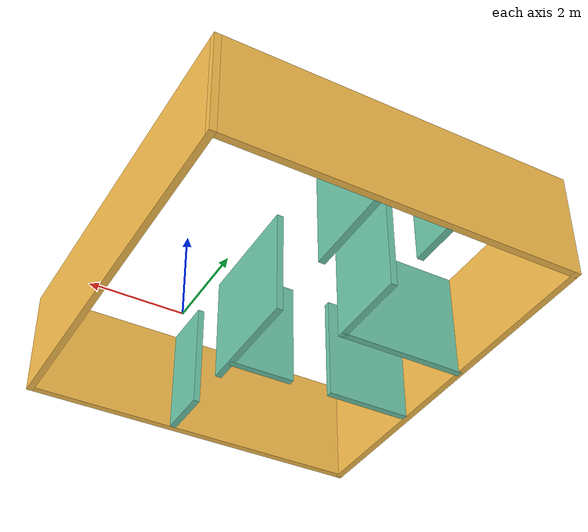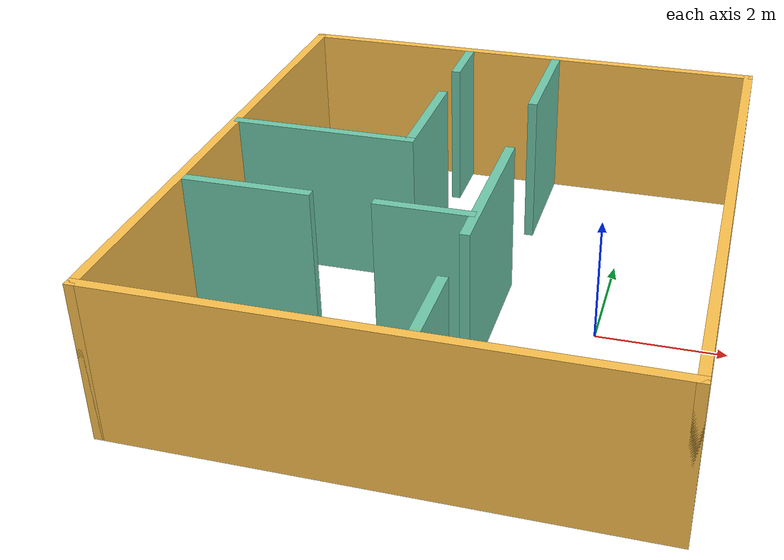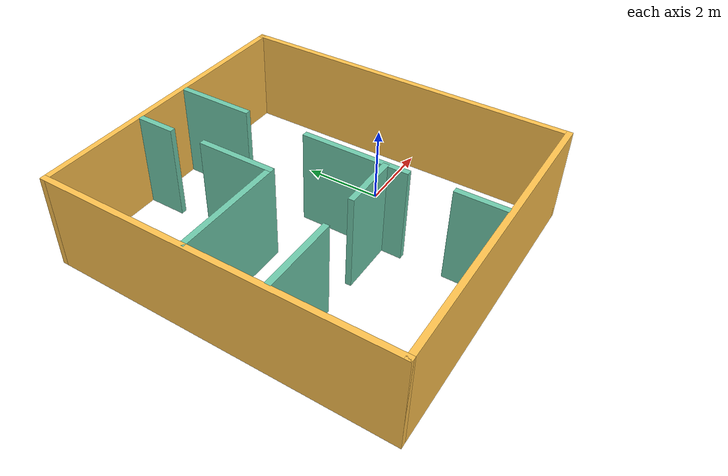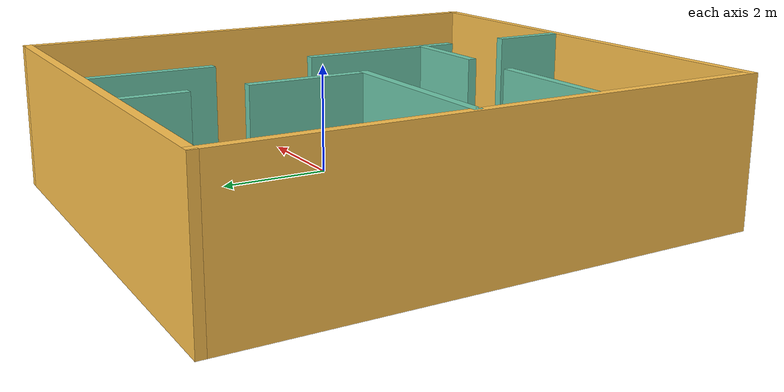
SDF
<?xml version='1.0'?>
<sdf version='1.7'>
  <model name='rda_maze'>
    <pose>-2.1801 0.3768 0 0 -0 0</pose>
    <link name='Wall_11'>
      <collision name='Wall_11_Collision'>
        <geometry>
          <box>
            <size>2.75 0.15 2.5</size>
          </box>
        </geometry>
        <pose>0 0 1.25 0 -0 0</pose>
      </collision>
      <visual name='Wall_11_Visual'>
        <pose>0 0 1.25 0 -0 0</pose>
        <geometry>
          <box>
            <size>2.75 0.15 2.5</size>
          </box>
        </geometry>
        <material>
          <script>
            <uri>file://media/materials/scripts/gazebo.material</uri>
            <name>Gazebo/Grey</name>
          </script>
          <ambient>0.435294 0.796078 0.67451 1</ambient>
        </material>
        <meta>
          <layer>0</layer>
        </meta>
      </visual>
      <pose>0.549806 -0.665619 0 0 -0 -1.5708</pose>
    </link>
    <link name='Wall_13'>
      <collision name='Wall_13_Collision'>
        <geometry>
          <box>
            <size>1.25 0.15 2.5</size>
          </box>
        </geometry>
        <pose>0 0 1.25 0 -0 0</pose>
      </collision>
      <visual name='Wall_13_Visual'>
        <pose>0 0 1.25 0 -0 0</pose>
        <geometry>
          <box>
            <size>1.25 0.15 2.5</size>
          </box>
        </geometry>
        <material>
          <script>
            <uri>file://media/materials/scripts/gazebo.material</uri>
            <name>Gazebo/Grey</name>
          </script>
          <ambient>0.435294 0.796078 0.67451 1</ambient>
        </material>
        <meta>
          <layer>0</layer>
        </meta>
      </visual>
      <pose>0.549806 -3.73687 0 0 -0 -1.5708</pose>
    </link>
    <link name='Wall_15'>
      <collision name='Wall_15_Collision'>
        <geometry>
          <box>
            <size>3 0.15 2.5</size>
          </box>
        </geometry>
        <pose>0 0 1.25 0 -0 0</pose>
      </collision>
      <visual name='Wall_15_Visual'>
        <pose>0 0 1.25 0 -0 0</pose>
        <geometry>
          <box>
            <size>3 0.15 2.5</size>
          </box>
        </geometry>
        <material>
          <script>
            <uri>file://media/materials/scripts/gazebo.material</uri>
            <name>Gazebo/Grey</name>
          </script>
          <ambient>0.435294 0.796078 0.67451 1</ambient>
        </material>
        <meta>
          <layer>0</layer>
        </meta>
      </visual>
      <pose>-2.44107 0.563598 0 0 -0 0</pose>
    </link>
    <link name='Wall_16'>
      <collision name='Wall_16_Collision'>
        <geometry>
          <box>
            <size>2 0.15 2.5</size>
          </box>
        </geometry>
        <pose>0 0 1.25 0 -0 0</pose>
      </collision>
      <visual name='Wall_16_Visual'>
        <pose>0 0 1.25 0 -0 0</pose>
        <geometry>
          <box>
            <size>2 0.15 2.5</size>
          </box>
        </geometry>
        <material>
          <script>
            <uri>file://media/materials/scripts/gazebo.material</uri>
            <name>Gazebo/Grey</name>
          </script>
          <ambient>0.435294 0.796078 0.67451 1</ambient>
        </material>
        <meta>
          <layer>0</layer>
        </meta>
      </visual>
      <pose>-1.01607 1.4886 0 0 -0 1.5708</pose>
    </link>
    <link name='Wall_18'>
      <collision name='Wall_18_Collision'>
        <geometry>
          <box>
            <size>1 0.15 2.5</size>
          </box>
        </geometry>
        <pose>0 0 1.25 0 -0 0</pose>
      </collision>
      <visual name='Wall_18_Visual'>
        <pose>0 0 1.25 0 -0 0</pose>
        <geometry>
          <box>
            <size>1 0.15 2.5</size>
          </box>
        </geometry>
        <material>
          <script>
            <uri>file://media/materials/scripts/gazebo.material</uri>
            <name>Gazebo/Grey</name>
          </script>
          <ambient>0.435294 0.796078 0.67451 1</ambient>
        </material>
        <meta>
          <layer>0</layer>
        </meta>
      </visual>
      <pose>-1.03368 3.86002 0 0 -0 -1.5708</pose>
    </link>
    <link name='Wall_21'>
      <collision name='Wall_21_Collision'>
        <geometry>
          <box>
            <size>2 0.15 2.5</size>
          </box>
        </geometry>
        <pose>0 0 1.25 0 -0 0</pose>
      </collision>
      <visual name='Wall_21_Visual'>
        <pose>0 0 1.25 0 -0 0</pose>
        <geometry>
          <box>
            <size>2 0.15 2.5</size>
          </box>
        </geometry>
        <material>
          <script>
            <uri>file://media/materials/scripts/gazebo.material</uri>
            <name>Gazebo/Grey</name>
          </script>
          <ambient>0.435294 0.796078 0.67451 1</ambient>
        </material>
        <meta>
          <layer>0</layer>
        </meta>
      </visual>
      <pose>-2.86703 -1.46163 0 0 -0 0</pose>
    </link>
    <link name='Wall_23'>
      <collision name='Wall_23_Collision'>
        <geometry>
          <box>
            <size>1.5 0.15 2.5</size>
          </box>
        </geometry>
        <pose>0 0 1.25 0 -0 0</pose>
      </collision>
      <visual name='Wall_23_Visual'>
        <pose>0 0 1.25 0 -0 0</pose>
        <geometry>
          <box>
            <size>1.5 0.15 2.5</size>
          </box>
        </geometry>
        <material>
          <script>
            <uri>file://media/materials/scripts/gazebo.material</uri>
            <name>Gazebo/Grey</name>
          </script>
          <ambient>0.435294 0.796078 0.67451 1</ambient>
        </material>
        <meta>
          <layer>0</layer>
        </meta>
      </visual>
      <pose>-0.189651 -1.46163 0 0 -0 0</pose>
    </link>
    <link name='Wall_4'>
      <collision name='Wall_4_Collision'>
        <geometry>
          <box>
            <size>9 0.15 2.5</size>
          </box>
        </geometry>
        <pose>0 0 1.25 0 -0 0</pose>
      </collision>
      <visual name='Wall_4_Visual'>
        <pose>0 0 1.25 0 -0 0</pose>
        <geometry>
          <box>
            <size>9 0.15 2.5</size>
          </box>
        </geometry>
        <material>
          <script>
            <uri>file://media/materials/scripts/gazebo.material</uri>
            <name>Gazebo/Grey</name>
          </script>
          <ambient>1 0.764706 0.305882 1</ambient>
        </material>
        <meta>
          <layer>0</layer>
        </meta>
      </visual>
      <pose>-3.925 -0 0 0 -0 -1.5708</pose>
    </link>
    <link name='Wall_5'>
      <collision name='Wall_5_Collision'>
        <geometry>
          <box>
            <size>8 0.15 2.5</size>
          </box>
        </geometry>
        <pose>0 0 1.25 0 -0 0</pose>
      </collision>
      <visual name='Wall_5_Visual'>
        <pose>0 0 1.25 0 -0 0</pose>
        <geometry>
          <box>
            <size>8 0.15 2.5</size>
          </box>
        </geometry>
        <material>
          <script>
            <uri>file://media/materials/scripts/gazebo.material</uri>
            <name>Gazebo/Grey</name>
          </script>
          <ambient>1 0.764706 0.305882 1</ambient>
        </material>
        <meta>
          <layer>0</layer>
        </meta>
      </visual>
      <pose>0 -4.425 0 0 -0 0</pose>
    </link>
    <link name='Wall_6'>
      <collision name='Wall_6_Collision'>
        <geometry>
          <box>
            <size>9 0.15 2.5</size>
          </box>
        </geometry>
        <pose>0 0 1.25 0 -0 0</pose>
      </collision>
      <visual name='Wall_6_Visual'>
        <pose>0 0 1.25 0 -0 0</pose>
        <geometry>
          <box>
            <size>9 0.15 2.5</size>
          </box>
        </geometry>
        <material>
          <script>
            <uri>file://media/materials/scripts/gazebo.material</uri>
            <name>Gazebo/Grey</name>
          </script>
          <ambient>1 0.764706 0.305882 1</ambient>
        </material>
        <meta>
          <layer>0</layer>
        </meta>
      </visual>
      <pose>3.925 -0 0 0 -0 1.5708</pose>
    </link>
    <link name='Wall_7'>
      <collision name='Wall_7_Collision'>
        <geometry>
          <box>
            <size>8 0.15 2.5</size>
          </box>
        </geometry>
        <pose>0 0 1.25 0 -0 0</pose>
      </collision>
      <visual name='Wall_7_Visual'>
        <pose>0 0 1.25 0 -0 0</pose>
        <geometry>
          <box>
            <size>8 0.15 2.5</size>
          </box>
        </geometry>
        <material>
          <script>
            <uri>file://media/materials/scripts/gazebo.material</uri>
            <name>Gazebo/Grey</name>
          </script>
          <ambient>1 0.764706 0.305882 1</ambient>
        </material>
        <meta>
          <layer>0</layer>
        </meta>
      </visual>
      <pose>0 4.425 0 0 -0 3.14159</pose>
    </link>
    <link name='Wall_9'>
      <collision name='Wall_9_Collision'>
        <geometry>
          <box>
            <size>2 0.15 2.5</size>
          </box>
        </geometry>
        <pose>0 0 1.25 0 -0 0</pose>
      </collision>
      <visual name='Wall_9_Visual'>
        <pose>0 0 1.25 0 -0 0</pose>
        <geometry>
          <box>
            <size>2 0.15 2.5</size>
          </box>
        </geometry>
        <material>
          <script>
            <uri>file://media/materials/scripts/gazebo.material</uri>
            <name>Gazebo/Grey</name>
          </script>
          <ambient>0.435294 0.796078 0.67451 1</ambient>
        </material>
        <meta>
          <layer>0</layer>
        </meta>
      </visual>
      <pose>0.549806 3.35846 0 0 -0 -1.5708</pose>
    </link>
    <static>1</static>
  </model>
</sdf>
